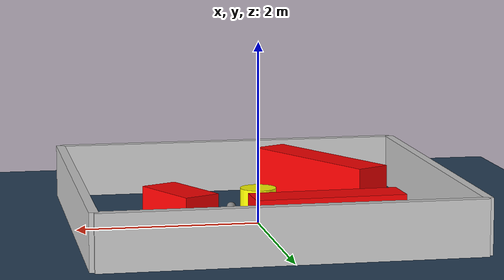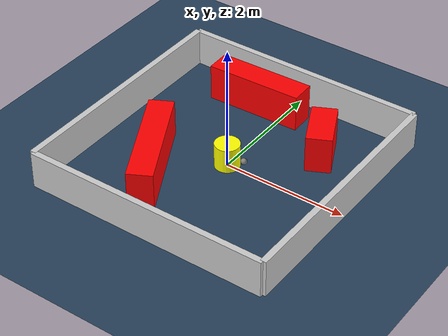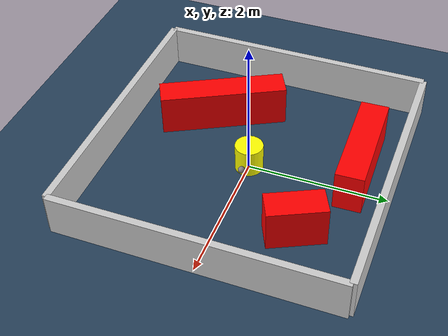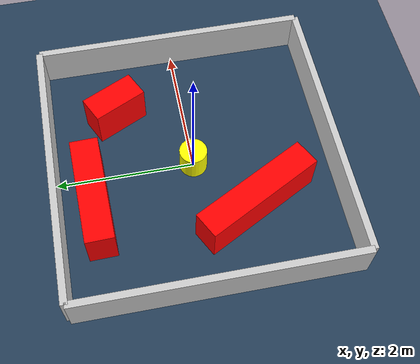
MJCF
<?xml version="1.0" ?>
<mujoco model="generated_environment">
  <option timestep="0.01" integrator="RK4" cone="elliptic"/>
  <default>
    <geom density="1"/>
  </default>
  <asset>
    <texture builtin="gradient" height="3072" rgb1="0.3 0.5 0.7" rgb2="0 0 0" type="skybox" width="512"/>
    <texture builtin="checker" height="300" mark="edge" markrgb="0.8 0.8 0.8" name="groundplane" rgb1="0.2 0.3 0.4" rgb2="0.1 0.2 0.3" type="2d" width="300"/>
    <material name="groundplane" reflectance="0.2" texrepeat="5 5" texture="groundplane" texuniform="true"/>
    <material name="robot" rgba="0.0 1.0 0.0 1"/>
  </asset>
  <worldbody>
    <light dir="0 0 -1" directional="true" pos="0 0 1.5"/>
    <geom condim="4" friction="1.0 0.005 0.001" material="groundplane" name="floor" size="0 0 0.05" type="plane"/>
    <body name="walls">
      <geom name="wall_1" condim="4" pos="-2.0 0.0 0.3" rgba="0.800000011920929 0.800000011920929 0.800000011920929 1.0" size="0.05 2.0 0.3" type="box"/>
      <geom name="wall_2" condim="4" pos="2.0 0.0 0.3" rgba="0.800000011920929 0.800000011920929 0.800000011920929 1.0" size="0.05 2.0 0.3" type="box"/>
      <geom name="wall_3" condim="4" pos="0.0 -2.0 0.3" rgba="0.800000011920929 0.800000011920929 0.800000011920929 1.0" size="2.0 0.05 0.3" type="box"/>
      <geom name="wall_4" condim="4" pos="0.0 2.0 0.3" rgba="0.800000011920929 0.800000011920929 0.800000011920929 1.0" size="2.0 0.05 0.3" type="box"/>
    </body>
    <body name="robot">
      <joint name="joint_x" type="slide" pos="0 0 0" axis="1 0 0"/>
      <joint name="joint_y" type="slide" pos="0 0 0" axis="0 1 0"/>
      <geom name="robot" type="sphere" pos="0.3 0.0 0.2" size="0.05" mass="5." friction="1.0 0.005 0.0001" condim="4" rgba="0.5 0.5 0.5 1.0"/>
      <site name="sensor_ball"/>
    </body>
    <body name="obstacle_movable_1">
      <geom name="obstacle_movable_1" condim="4" pos="0.0 0.0 0.2" euler="0 0 0.0" friction="1.0 0.005 0.001" rgba="1.0 1.0 0.0 1.0" size="0.2 0.2 0.0" type="cylinder" mass="0.1"/>
      <joint type="free"/>
    </body>
    <body name="obstacle_2_static">
      <geom name="obstacle_2_static" condim="4" pos="-0.4410215010326918 1.4858696511250067 0.3" euler="0 0 181.66071852723053" friction="1.0 0.005 0.001" rgba="1 0 0 1" size="0.7853268889358176 0.2 0.3" type="box"/>
    </body>
    <body name="obstacle_3_static">
      <geom name="obstacle_3_static" condim="4" pos="1.0076858341552444 0.9953420837884426 0.3" euler="0 0 116.0088998048063" friction="1.0 0.005 0.001" rgba="1 0 0 1" size="0.40215947282676534 0.2 0.3" type="box"/>
    </body>
    <body name="obstacle_4_static">
      <geom name="obstacle_4_static" condim="4" pos="-0.8516912900987106 -0.7261554119048326 0.3" euler="0 0 297.7994640200922" friction="1.0 0.005 0.001" rgba="1 0 0 1" size="0.912229728876442 0.2 0.3" type="box"/>
    </body>
  </worldbody>
  <actuator>
    <motor name="actuator_x" joint="joint_x" gear="1" ctrlrange="-1 1"/>
    <motor name="actuator_y" joint="joint_y" gear="1" ctrlrange="-1 1"/>
  </actuator>
</mujoco>
